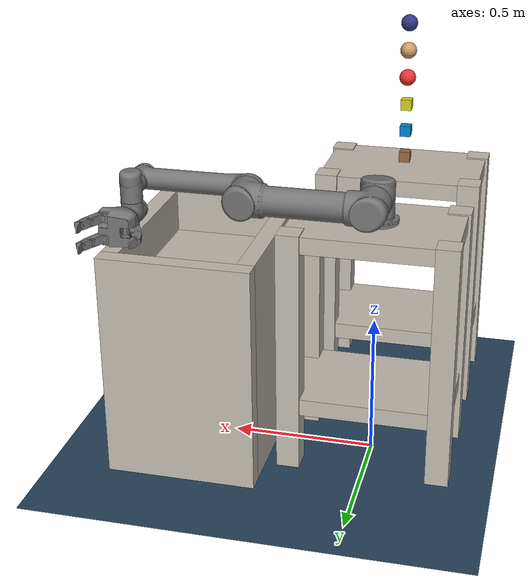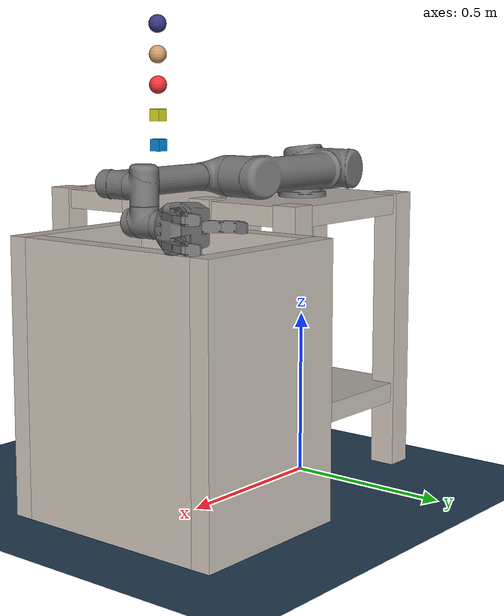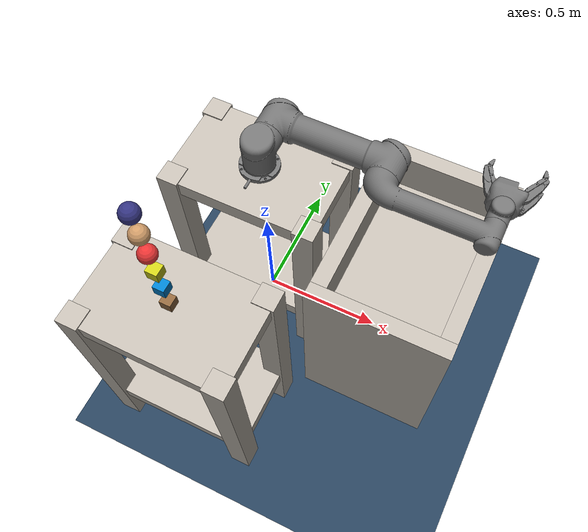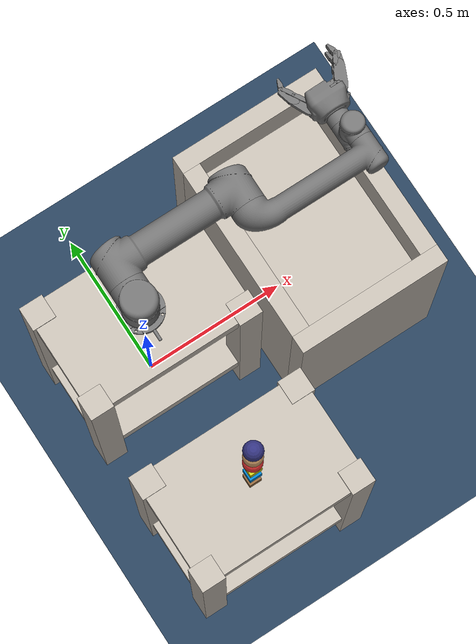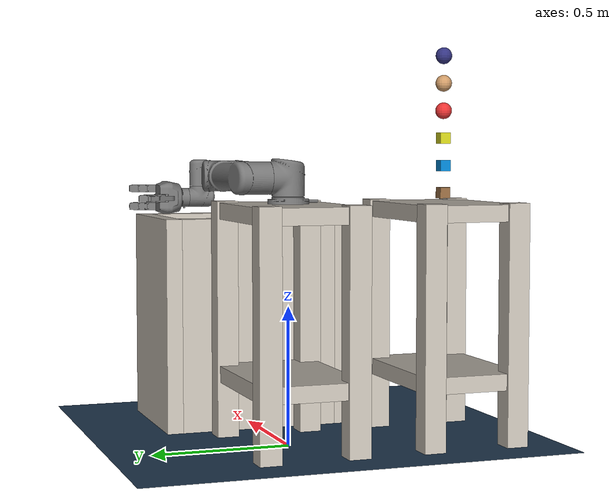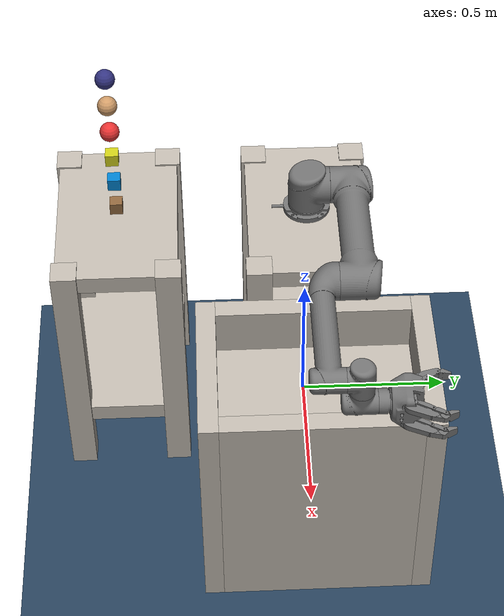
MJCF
<!--Link  MuJoCo modeling: http://www.mujoco.org/book/modeling.html-->

<mujoco model="ur5gripper">
    <compiler angle="radian"
              inertiafromgeom="true"
              texturedir="textures/"
              meshdir="mesh/visual/"/>
    <option timestep="2e-3"
            iterations="10"
            tolerance="1e-10"
            impratio="20"/>
    <size njmax="600" nconmax="150" nstack="300000"/>

    <default>
        <site rgba="0.8 0.6 0.7 0.3" type="ellipsoid" group="3"/>
        <geom contype='1' conaffinity='1' condim='4'  margin="1e-3" solref=".01 1" solimp=".99 .99 .01" />
        <joint armature="0.01" damping=".1"/>
        <default class="UR5">
            <joint damping='65'/>
        </default>
        <default class="UR5e">
            <joint damping='45'/>
        </default>
        <default class="GRIPPER">
            <joint damping='5'/>
        </default>
    </default>

    <visual>
        <map fogstart="3" fogend="5" znear="0.05"/>
        <quality shadowsize="2048"/>
        <scale framelength="0.1"
               framewidth="0.005"
               contactwidth="0.1"
               contactheight="0.005"
               forcewidth="0.01"
               />
    </visual>

    <!--Assets-->
    <asset>
        <!--Meshes-->
        <mesh name="base"           file="base.stl"     />
        <mesh name="shoulder"       file="shoulder.stl" />
        <mesh name="upperarm"       file="upperarm.stl" />
        <mesh name="forearm"        file="forearm.stl"  />
        <mesh name="wrist1"         file="wrist1.stl"   />
        <mesh name="wrist2"         file="wrist2.stl"   />
        <mesh name="wrist3"         file="wrist3.stl"   />
        <mesh name="gripperpalm"    file="palm.STL"     />
        <mesh name="link_0"         file="link_0.STL"   />
        <mesh name="link_1"         file="link_1.STL"   />
        <mesh name="link_2"         file="link_2.STL"   />
        <mesh name="link_3"         file="link_3.STL"   />
        <!--Textures-->
        <texture name="ur5_tex"     type="2d"       builtin="flat" height="32" width="32" rgb1="0.45 0.45 0.45" />
        <texture name="gripper_tex" type="2d"       builtin="flat" height="32" width="32" rgb1="0.45 0.45 0.45" rgb2="0 0 0"/>
        <texture name="bench_tex"   type="2d"       builtin="flat" height="32" width="32" rgb1="0.7 0.7 0.7" />
        <texture name="sky_tex"     type="skybox"   builtin="gradient" width="100" height="100" rgb1="1 1 1" rgb2="0.3 0.3 0.8" />
        <texture name="texgeom"     type="cube"     builtin="flat" mark="cross" width="127" height="1278" rgb1="0.8 0.6 0.4" rgb2="0.8 0.6 0.4" markrgb="1 1 1" random="0.01" />
        <texture name="floor_tex"   type="2d"        builtin="checker" rgb1=".2 .3 .4" rgb2=".1 .2 .3" width="100" height="100" />
        <texture name="wood"        type="cube"     file="wood2.png"/>
        <texture name="metal"        type="cube"     file="metal2.png"/>
        <!--Materials-->
        <material name="ur5_mat"        texture="ur5_tex"   shininess="0.9" specular="0.75" reflectance="0.3"/>
        <material name="gripper_mat"    texture="gripper_tex"   shininess="0.9" specular="0.75" reflectance="0.4"/>
        <material name='floor_mat'      texture="floor_tex"  shininess="0.8" texrepeat="10 10" specular="0.7"  reflectance="0.5" />
        <material name='geom'           texture="texgeom"   texuniform="true" />
        <material name="bench_mat"      texture="metal"   shininess="0.1" specular="0.5" reflectance="0.2"/>
        <material name="tablecube"      texture="wood" rgba=".8 .8 .8 1"/>
    </asset>

    <!--Contacts-->
    <contact>
        <exclude body1="gripperpalm" body2="gripperfinger_1_link_1"/>
		<exclude body1="gripperpalm" body2="gripperfinger_2_link_1"/>
		<exclude body1="gripperpalm" body2="gripperfinger_middle_link_1"/>
        <exclude body1="box_link" body2="base_link"/>
		<exclude body1="base_link" body2="shoulder_link"/>
		<exclude body1="shoulder_link" body2="upper_arm_link"/>
        <exclude body1="upper_arm_link" body2="forearm_link"/>
		<exclude body1="forearm_link" body2="wrist_1_link"/>
		<exclude body1="wrist_1_link" body2="wrist_2_link"/>
        <exclude body1="wrist_2_link" body2="wrist_3_link"/>
        <exclude body1="wrist_3_link" body2="gripperpalm"/>
        <exclude body1="ee_link" body2="wrist_3_link"/>
        <exclude body1="ee_link" body2="gripperpalm"/>
    </contact>

    <!--MODEL DESCRIPTION-->
    <worldbody>
        <!--Lighting parameters-->
        <light name="light3" mode="targetbody" target="box_link" directional="true" pos="1 -1 3" />
        <!--Camera parameters-->
        <camera name="main1" mode="fixed" target="gripperpalm" pos="2 2 2.7" axisangle="2 2 -2 1"/>
        <camera name="top_down" mode="fixed" target="gripperpalm" pos="0 -0.6 2.0" axisangle="2 2 2 0"/>
        <camera name="side" mode="fixed" target="gripperpalm" pos="0.8 -0.6 1.0" quat="0.5 0.5 0.5 0.5"/>
        <!--Floor Property-->
        <geom name='floor' material="floor_mat" pos='0 0 0' size='2.5 2.5 0.1'  type='plane' />

        <body name="box_2_link" pos="0 -0.6 0.435">
            <geom size=".29 .19 .03" pos ="0 0 0.4" type="box" material="bench_mat"/>
            <geom size=".29 .19 .03" pos ="0 0 -0.2" type="box" material="bench_mat"/>
            <geom size=".04 .04 .435" pos =".26 .16 0" type="box" material="bench_mat"/>
            <geom size=".04 .04 .435" pos ="-.26 .16 0" type="box" material="bench_mat"/>
            <geom size=".04 .04 .435" pos =".26 -.16 0" type="box" material="bench_mat"/>
            <geom size=".04 .04 .435" pos ="-.26 -.16 0" type="box" material="bench_mat"/>
            <inertial pos="0 0 0" mass="1000" diaginertia="0 0 0" />
        </body>

        <body name="drop_box" pos="0.6 0.0 0.0">
            <geom size=".2 .3 .03" pos ="0 0 0.615" type="box" material="bench_mat"/>
            <geom size=".03 .3 .4" pos ="0.23 0.0 0.4" type="box" material="bench_mat"/>
            <geom size=".03 .3 .4" pos ="-0.23 0.0 0.4" type="box" material="bench_mat"/>
            <geom size=".26 .03 .4" pos ="0.0 0.33 0.4" type="box" material="bench_mat"/>
            <geom size=".26 .03 .4" pos ="0.0 -0.33 0.4" type="box" material="bench_mat"/>
            <inertial pos="0 0 0" mass="1000" diaginertia="0 0 0" />
        </body>

        <!--Robot UR5-->
        <body name="box_link" pos="0 0 0.435">
            <geom size=".29 .19 .03" pos ="0 0 0.4" type="box" material="bench_mat"/>
            <geom size=".29 .19 .03" pos ="0 0 -0.2" type="box" material="bench_mat"/>
            <geom size=".04 .04 .435" pos =".26 .16 0" type="box" material="bench_mat"/>
            <geom size=".04 .04 .435" pos ="-.26 .16 0" type="box" material="bench_mat"/>
            <geom size=".04 .04 .435" pos =".26 -.16 0" type="box" material="bench_mat"/>
            <geom size=".04 .04 .435" pos ="-.26 -.16 0" type="box" material="bench_mat"/>
            <inertial pos="0 0 0" mass="1000" diaginertia="0 0 0" />
            <body name="base_link" pos="0 0 0.435">
                <inertial pos="0 0 0" quat="0.5 0.5 -0.5 0.5" mass="4" diaginertia="0.0072 0.00443333 0.00443333" />
                <geom type="mesh"  mesh="base" material="ur5_mat"/>
                <body name="shoulder_link" pos="0 0 0.089159">
                    <inertial pos="0 0 0" mass="3.7" diaginertia="0.0102675 0.0102675 0.00666" />
                    <joint name="shoulder_pan_joint" class="UR5" pos="0 0 0" axis="0 0 1" limited="true" range="-3.14159 3.14159" />
                    <geom type="mesh"  mesh="shoulder" material="ur5_mat"/>
                    <body name="upper_arm_link" pos="0 0.13585 0" quat="0.707107 0 0.707107 0">
                        <inertial pos="0 0 0.28" mass="8.393" diaginertia="0.226891 0.226891 0.0151074" />
                        <joint name="shoulder_lift_joint" class="UR5" pos="0 0 0" axis="0 1 0" limited="true" range="-3.14159 0" /> <!--Range= -3.14159 3.14159-->
                        <geom type="mesh"  mesh="upperarm" material="ur5_mat"/>
                        <body name="forearm_link" pos="0 -0.1197 0.425">
                            <inertial pos="0 0 0.25" mass="2.275" diaginertia="0.0494433 0.0494433 0.004095" />
                            <joint name="elbow_joint" class="UR5" pos="0 0 0" axis="0 1 0" limited="true" range="-3.14159 3.14159" />
                            <geom type="mesh"  mesh="forearm" material="ur5_mat"/>
                            <body name="wrist_1_link" pos="0 0 0.39225" quat="0.707107 0 0.707107 0">
                                <inertial pos="0 0 0" quat="0.5 0.5 -0.5 0.5" mass="1.219" diaginertia="0.21942 0.111173 0.111173" />
                                <joint name="wrist_1_joint" class="UR5e" pos="0 0 0" axis="0 1 0" limited="true" range="-3.14159 3.14159" />
                                <geom type="mesh"  mesh="wrist1" material="ur5_mat"/>
                                <body name="wrist_2_link" pos="0 0.093 0">
                                    <inertial pos="0 0 0" quat="0.5 0.5 -0.5 0.5" mass="1.219" diaginertia="0.21942 0.111173 0.111173" />
                                    <joint name="wrist_2_joint" class="UR5e" pos="0 0 0" axis="0 0 1" limited="true" range="-3.14159 3.14159" />
                                    <geom type="mesh"  mesh="wrist2" material="ur5_mat"/>
                                    <body name="wrist_3_link" pos="0 0 0.09465">
                                        <inertial pos="0 0 0" quat="0.5 0.5 -0.5 0.5" mass="0.1879" diaginertia="0.033822 0.0171365 0.0171365" />
                                        <joint name="wrist_3_joint" class="UR5e" pos="0 0 0" axis="0 1 0" limited="true" range="-3.14159 3.14159" />
                                        <geom type="mesh"  mesh="wrist3" material="ur5_mat"/>
                                        <body name="ee_link" pos="0 0.0823 0" quat="0.707107 0 0 0.707107">
                                            <inertial pos="-0.01 0 0" mass="0.001" diaginertia="1.66667e-08 1.66667e-08 1.66667e-08" />
                                            <geom size="0.005 0.005 0.005" pos="-0.01 0 0" type="box" />
                                        </body>
                                        <!--GRIPPER-->
                                        <body name="tool0" pos="0 0.0823 0" quat="0.707107 -0.707107 0 0">
                                            <inertial pos="0 0.0823 0" quat="0.707107 -0.707107 0 0" mass="0" diaginertia="0 0 0" />
                                            <body name="gripperpalm" pos="0 0 0.0423" quat="0.707107 0.707107 0 0">
                                                <site name="gripperpalm" pos="0 0.05 0" size="0.035 0.0055 0.035"/>
                                                <inertial pos="0 0 0" mass="1.3" diaginertia="0.0035 0.0035 0.0035" />
                                                <geom type="mesh"  mesh="gripperpalm" material="gripper_mat"/>
                                                <!--FINGERS-->
                                                <body name="gripperfinger_1_link_0" pos="-0.0455 0.0214 0.036" quat="-2.59838e-06 0.706825 0.707388 2.59631e-06">
                                                    <inertial pos="-0.01 0 0" quat="0.5 0.5 0.5 0.5" mass="0.1" diaginertia="2.5e-05 2.5e-05 1.8e-05" />
                                                    <joint name="gripperpalm_finger_1_joint" class="GRIPPER" pos="0 0 0" axis="0 1 0" limited="true" range="-0.2967 0.2967" />
                                                    <geom type="mesh" material="gripper_mat" mesh="link_0" />
                                                    <body name="gripperfinger_1_link_1" pos="0 0 0" quat="0.501642 0 0 -0.865075">
                                                        <site name="gripperfinger_1_polp_1" pos="-0.005 0.035 0" size=".006 .014 .014"/>
                                                        <inertial pos="0.00053 0.03218 0" quat="0.00544471 0.00542787 0.707078 0.707093" mass="0.047" diaginertia="6.43594e-05 6.06192e-05 4.97928e-06" />
                                                        <joint name="gripperfinger_1_joint_1" class="GRIPPER" pos="0 0 0" axis="0 0 1" limited="true" range="0 1.2217" />
                                                        <geom pos="0 0.05717 0" quat="0.707105 0 0 0.707108" type="mesh" material="gripper_mat" mesh="link_1" />
                                                        <body name="gripperfinger_1_link_2" pos="0 0.05715 0">
                                                            <site name="gripperfinger_1_polp_2" pos="-0.006 0.02 0" size=".006 .014 .014"/>
                                                            <inertial pos="0.00048 0.02167 0.00018" quat="0.00523005 0.00665272 0.709882 0.70427" mass="0.03284" diaginertia="2.24866e-05 1.98645e-05 3.47368e-06" />
                                                            <joint name="gripperfinger_1_joint_2" class="GRIPPER" pos="0 0 0" axis="0 0 1" limited="true" range="0 1.5708" />
                                                            <geom pos="0 0.0381 0.0075" quat="0.707105 0 0 0.707108" type="mesh" material="gripper_mat" mesh="link_2" />
                                                            <body name="gripperfinger_1_link_3" pos="0 0.039 0" quat="0.501642 0 0 0.865075">
                                                                <site name="gripperfinger_1_polp_3" pos="0.025 0.006 0" size=".014 .006 .014"/>
                                                                <inertial pos="0.01626 0.00049 0.0002" quat="0.520969 0.517877 0.481643 0.477927" mass="0.03354" diaginertia="1.43512e-05 1.26412e-05 2.98016e-06" />
                                                                <joint name="gripperfinger_1_joint_3" class="GRIPPER" pos="0 0 0" axis="0 0 1" limited="true" range="-0.6632 1.0471" />
                                                                <geom type="mesh" material="gripper_mat" mesh="link_3" />
                                                            </body>
                                                        </body>
                                                    </body>
                                                </body>
                                                <body name="gripperfinger_2_link_0" pos="-0.0455 0.0214 -0.036" quat="-2.59838e-06 0.706825 0.707388 2.59631e-06">
                                                    <inertial pos="-0.01 0 0" quat="0.5 0.5 0.5 0.5" mass="0.1" diaginertia="2.5e-05 2.5e-05 1.8e-05" />
                                                    <joint name="gripperpalm_finger_2_joint" class="GRIPPER" pos="0 0 0" axis="0 1 0" limited="true" range="-0.2967 0.2967" />
                                                    <geom type="mesh" material="gripper_mat" mesh="link_0" />
                                                    <body name="gripperfinger_2_link_1" pos="0 0 0" quat="0.501642 0 0 -0.865075">
                                                        <site name="gripperfinger_2_polp_1" pos="-0.005 0.035 0" size=".006 .014 .014"/>
                                                        <inertial pos="0.00053 0.03218 0" quat="0.00544471 0.00542787 0.707078 0.707093" mass="0.047" diaginertia="6.43594e-05 6.06192e-05 4.97928e-06" />
                                                        <joint name="gripperfinger_2_joint_1" class="GRIPPER" pos="0 0 0" axis="0 0 1" limited="true" range="0 1.2217" />
                                                        <geom pos="0 0.05717 0" quat="0.707105 0 0 0.707108" type="mesh" material="gripper_mat" mesh="link_1" />
                                                        <body name="gripperfinger_2_link_2" pos="0 0.05715 0">
                                                            <site name="gripperfinger_2_polp_2" pos="-0.006 0.02 0" size=".006 .014 .014"/>
                                                            <inertial pos="0.00048 0.02167 0.00018" quat="0.00523005 0.00665272 0.709882 0.70427" mass="0.03284" diaginertia="2.24866e-05 1.98645e-05 3.47368e-06" />
                                                            <joint name="gripperfinger_2_joint_2" class="GRIPPER" pos="0 0 0" axis="0 0 1" limited="true" range="0 1.5708" />
                                                            <geom pos="0 0.0381 0.0075" quat="0.707105 0 0 0.707108" type="mesh" material="gripper_mat" mesh="link_2" />
                                                            <body name="gripperfinger_2_link_3" pos="0 0.039 0" quat="0.501642 0 0 0.865075">
                                                                <site name="gripperfinger_2_polp_3" pos="0.025 0.006 0" size=".014 .006 .014"/>
                                                                <inertial pos="0.01626 0.00049 0.0002" quat="0.520969 0.517877 0.481643 0.477927" mass="0.03354" diaginertia="1.43512e-05 1.26412e-05 2.98016e-06" />
                                                                <joint name="gripperfinger_2_joint_3" class="GRIPPER" pos="0 0 0" axis="0 0 1" limited="true" range="-0.6632 1.0471" />
                                                                <geom type="mesh" material="gripper_mat" mesh="link_3" />
                                                            </body>
                                                        </body>
                                                    </body>
                                                </body>
                                                <body name="gripperfinger_middle_link_0" pos="0.0455 0.0214 0" quat="0.707388 0 0 0.706825">
                                                    <inertial pos="-0.01 0 0" quat="0.5 0.5 0.5 0.5" mass="0.1" diaginertia="2.5e-05 2.5e-05 1.8e-05" />
                                                    <joint name="gripperpalm_finger_middle_joint" class="GRIPPER" pos="0 0 0" axis="0 1 0"  limited="true" range="-1e-3 1e-3"/> <!--RANGE CAMBIATO (In realtà aggiunto, non c'era ??) A MANO DA ME PER LA STABILITA DEL POLLICE-->
                                                    <geom type="mesh" material="gripper_mat" mesh="link_0" />
                                                    <body name="gripperfinger_middle_link_1" pos="0 0 0" quat="0.501642 0 0 -0.865075">
                                                        <site name="gripperfinger_middle_polp_1" pos="-0.005 0.035 0" size=".006 .014 .014"/>
                                                        <inertial pos="0.00053 0.03218 0" quat="0.00544471 0.00542787 0.707078 0.707093" mass="0.047" diaginertia="6.43594e-05 6.06192e-05 4.97928e-06" />
                                                        <joint name="gripperfinger_middle_joint_1" class="GRIPPER" pos="0 0 0" axis="0 0 1" limited="true" range="0 1.2217" />
                                                        <geom pos="0 0.05717 0" quat="0.707105 0 0 0.707108" type="mesh" material="gripper_mat" mesh="link_1" />
                                                        <body name="gripperfinger_middle_link_2" pos="0 0.05715 0">
                                                            <site name="gripperfinger_middle_polp_2" pos="-0.006 0.02 0" size=".006 .014 .014"/>
                                                            <inertial pos="0.00048 0.02167 0.00018" quat="0.00523005 0.00665272 0.709882 0.70427" mass="0.03284" diaginertia="2.24866e-05 1.98645e-05 3.47368e-06" />
                                                            <joint name="gripperfinger_middle_joint_2" class="GRIPPER" pos="0 0 0" axis="0 0 1" limited="true" range="0 1.5708" />
                                                            <geom pos="0 0.0381 0.0075" quat="0.707105 0 0 0.707108" type="mesh" material="gripper_mat" mesh="link_2" />
                                                            <body name="gripperfinger_middle_link_3" pos="0 0.039 0" quat="0.501642 0 0 0.865075">
                                                                <site name="gripperfinger_middle_polp_3" pos="0.025 0.006 0" size=".014 .006 .014"/>
                                                                <inertial pos="0.01626 0.00049 0.0002" quat="0.520969 0.517877 0.481643 0.477927" mass="0.03354" diaginertia="1.43512e-05 1.26412e-05 2.98016e-06" />
                                                                <joint name="gripperfinger_middle_joint_3" class="GRIPPER" pos="0 0 0" axis="0 0 1" limited="true" range="-0.6632 1.0471" />
                                                                <geom type="mesh" material="gripper_mat" mesh="link_3" />
                                                            </body>
                                                        </body>
                                                    </body>
                                                </body>
                                            </body>
                                        </body>
                                    </body>
                                </body>
                            </body>
                        </body>
                    </body>
                </body>
                <body name="base" pos="0 0 0" quat="1.7949e-09 0 0 -1">
                    <inertial pos="0 0 0" quat="1.7949e-09 0 0 -1" mass="0" diaginertia="0 0 0" />
                </body>
            </body>
        </body>

        <body name="box_1" pos=".0 -.6 0.9">
            <joint armature="0" axis="1 0 0" damping="0" limited="false" name="box_1_x" pos="0 0 0" range="-5. 5." stiffness="0" type="slide"/>
            <joint armature="0" axis="0 1 0" damping="0" limited="true" name="box_1_y" pos="0 0 0" range="-5. 5." stiffness="0" type="slide"/>
            <joint armature="0" axis="0 0 1" damping="0" limited="true" name="box_1_z" pos="0 0 0" range="-2. 2." stiffness="0" type="slide"/>
            <geom name="box_1" pos="0 0 0" material="tablecube" size="0.02 0.02 0.02" type="box"/>
            <inertial pos="0 0 0" mass="0.2" diaginertia="0.001 0.001 0.001" />
        </body>

        <body name="box_2" pos=".0 -.6 1.0">
            <joint armature="0" axis="1 0 0" damping="0" limited="true" name="box_2_x" pos="0 0 0" range="-5. 5." stiffness="0" type="slide"/>
            <joint armature="0" axis="0 1 0" damping="0" limited="true" name="box_2_y" pos="0 0 0" range="-5. 5." stiffness="0" type="slide"/>
            <joint armature="0" axis="0 0 1" damping="0" limited="true" name="box_2_z" pos="0 0 0" range="-2. 2." stiffness="0" type="slide"/>
            <geom name="box_2" pos="0 0 0" rgba="0.0 0.5 0.8 1" size="0.02 0.02 0.02" type="box"/>
            <inertial pos="0 0 0" mass="0.2" diaginertia="0.001 0.001 0.001" />
        </body>

        <body name="box_3" pos=".0 -.6 1.1">
            <joint armature="0" axis="1 0 0" damping="0" limited="true" name="box_3_x" pos="0 0 0" range="-5. 5." stiffness="0" type="slide"/>
            <joint armature="0" axis="0 1 0" damping="0" limited="true" name="box_3_y" pos="0 0 0" range="-5. 5." stiffness="0" type="slide"/>
            <joint armature="0" axis="0 0 1" damping="0" limited="true" name="box_3_z" pos="0 0 0" range="-2. 2." stiffness="0" type="slide"/>
            <geom name="box_3" pos="0 0 0" rgba="0.8 0.8 0.1 1" size="0.02 0.02 0.02" type="box"/>
            <inertial pos="0 0 0" mass="0.2" diaginertia="0.001 0.001 0.001" />
        </body>

        <body name="ball_1" pos=".0 -.6 1.2">
            <joint armature="0" axis="1 0 0" damping="0" limited="true" name="ball_1_x" pos="0 0 0" range="-5. 5." stiffness="0" type="slide"/>
            <joint armature="0" axis="0 1 0" damping="0" limited="true" name="ball_1_y" pos="0 0 0" range="-5. 5." stiffness="0" type="slide"/>
            <joint armature="0" axis="0 0 1" damping="0" limited="true" name="ball_1_z" pos="0 0 0" range="-2. 2." stiffness="0" type="slide"/>
            <geom name="ball_1" pos="0 0 0" rgba="0.9 0.2 0.2 1" size=".03" type="sphere"/>
            <inertial pos="0 0 0" mass="0.2" diaginertia="0.001 0.001 0.001" />
        </body>

        <body name="ball_2" pos=".0 -.6 1.3">
            <joint armature="0" axis="1 0 0" damping="0" limited="true" name="ball_2_x" pos="0 0 0" range="-5. 5." stiffness="0" type="slide"/>
            <joint armature="0" axis="0 1 0" damping="0" limited="true" name="ball_2_y" pos="0 0 0" range="-5. 5." stiffness="0" type="slide"/>
            <joint armature="0" axis="0 0 1" damping="0" limited="true" name="ball_2_z" pos="0 0 0" range="-2. 2." stiffness="0" type="slide"/>
            <geom name="ball_2" pos="0 0 0" material="geom" size=".03" type="sphere"/>
            <inertial pos="0 0 0" mass="0.2" diaginertia="0.001 0.001 0.001" />
        </body>

        <body name="ball_3" pos=".0 -.6 1.4">
            <joint armature="0" axis="1 0 0" damping="0" limited="true" name="ball_3_x" pos="0 0 0" range="-5. 5." stiffness="0" type="slide"/>
            <joint armature="0" axis="0 1 0" damping="0" limited="true" name="ball_3_y" pos="0 0 0" range="-5. 5." stiffness="0" type="slide"/>
            <joint armature="0" axis="0 0 1" damping="0" limited="true" name="ball_3_z" pos="0 0 0" range="-2. 2." stiffness="0" type="slide"/>
            <geom name="ball_3" pos="0 0 0" rgba="0.2 0.2 0.5 1" size=".03" type="sphere"/>
            <inertial pos="0 0 0" mass="0.2" diaginertia="0.001 0.001 0.001" />
        </body>

    </worldbody>

    <tendon>
		<!--Middlefinger tendons-->
		<fixed name="middle12_cpl" range="0 1">
			<joint joint="gripperfinger_middle_joint_1"  coef="1"/>
			<joint joint="gripperfinger_middle_joint_2"  coef="-1.5"/>
		</fixed>
		<fixed name="middle23_cpl" range="0 1">
			<joint joint="gripperfinger_middle_joint_2"  coef="1"/>
			<joint joint="gripperfinger_middle_joint_3"  coef="-3.5"/>
		</fixed>

		<!--finger2 tendons-->
        <fixed name="finger2_12_cpl" range="0 1">
			<joint joint="gripperfinger_2_joint_1"  coef="1"/>
			<joint joint="gripperfinger_2_joint_2"  coef="-1.5"/>
		</fixed>
		<fixed name="finger2_23_cpl" range="0 1">
			<joint joint="gripperfinger_2_joint_2"  coef="1"/>
			<joint joint="gripperfinger_2_joint_3"  coef="-3.5"/>
		</fixed>

		<!--Finger1 tendons-->
        <fixed name="finger1_12_cpl" range="0 1">
			<joint joint="gripperfinger_1_joint_1"  coef="1"/>
			<joint joint="gripperfinger_1_joint_2"  coef="-1.5"/>
		</fixed>
		<fixed name="finger1_23_cpl" range="0 1">
			<joint joint="gripperfinger_1_joint_2"  coef="1"/>
			<joint joint="gripperfinger_1_joint_3"  coef="-3.5"/>
		</fixed>
	</tendon>

    <equality>
		<!-- GRIPPER Couplings -->
		<tendon name="middle12_cpl" 	tendon1="middle12_cpl"/>
		<tendon name="middle23_cpl" 	tendon1="middle23_cpl"/>

        <tendon name="finger2_12_cpl" 	tendon1="finger2_12_cpl"/>
		<tendon name="finger2_23_cpl" 	tendon1="finger2_23_cpl"/>

        <tendon name="finger1_12_cpl" 	tendon1="finger1_12_cpl"/>
		<tendon name="finger1_23_cpl" 	tendon1="finger1_23_cpl"/>

		<!-- SCISSOR Coupling -->
		<joint name="finger_12_scissor" joint1="gripperpalm_finger_2_joint" joint2="gripperpalm_finger_1_joint" polycoef="0 -1 0 0 0"/>
	</equality>

    <!--ACTUATORS-->
    <actuator>
        <!--UR5-->

        <motor name='shoulder_pan_T' ctrllimited="true" ctrlrange="-2 2" joint='shoulder_pan_joint' gear="101"/> <!--range -150 150-->
        <motor name='shoulder_lift_T' ctrllimited="true" ctrlrange="-2 2" joint='shoulder_lift_joint' gear="101"/>
        <motor name='forearm_T' ctrllimited="true" ctrlrange="-2 2" joint='elbow_joint' gear="101" />
        <motor name='wrist_1_T' ctrllimited="true" ctrlrange="-1 1" joint='wrist_1_joint' gear="101"/>  <!--range -28 28-->
        <motor name='wrist_2_T' ctrllimited="true" ctrlrange="-1 1" joint='wrist_2_joint' gear="101"/>
        <motor name='wrist_3_T' ctrllimited="true" ctrlrange="-1 1" joint='wrist_3_joint' gear="101"/>

        <!--Gripper-->

        <motor name='finger_1_T' ctrllimited="true" joint='gripperfinger_1_joint_1' ctrlrange='-0.5 .8' gear="20"/>
        <motor name='finger_2_T' ctrllimited="true" joint='gripperfinger_2_joint_1' ctrlrange='-0.5 .8' gear="20"/>
        <motor name='middle_finger_T'  ctrllimited="true" joint='gripperfinger_middle_joint_1' ctrlrange='-0.5 .8' gear="20"/>
        <motor name='finger_scissor_T' ctrllimited="true" joint='gripperpalm_finger_1_joint' ctrlrange="-0.8 0.8" gear="15"/>

    </actuator>

    <sensor>
        <touch name="gripperpalm_frc" 		site="gripperpalm"/>

        <touch name="finger_1_polp_1_frc"	site="gripperfinger_1_polp_1"/>
    	<touch name="finger_1_polp_2_frc" 	site="gripperfinger_1_polp_2"/>
        <touch name="finger_1_polp_3_frc" 	site="gripperfinger_1_polp_3"/>

        <touch name="finger_2_link_1_frc" 	site="gripperfinger_2_polp_1"/>
        <touch name="finger_2_link_2_frc" 	site="gripperfinger_2_polp_2"/>
        <touch name="finger_2_link_3_frc" 	site="gripperfinger_2_polp_3"/>

        <touch name="finger_middle_link_1_frc" 	site="gripperfinger_middle_polp_1"/>
        <touch name="finger_middle_link_2_frc" 	site="gripperfinger_middle_polp_2"/>
        <touch name="finger_middle_link_3_frc" 	site="gripperfinger_middle_polp_3"/>
    </sensor>
</mujoco>
